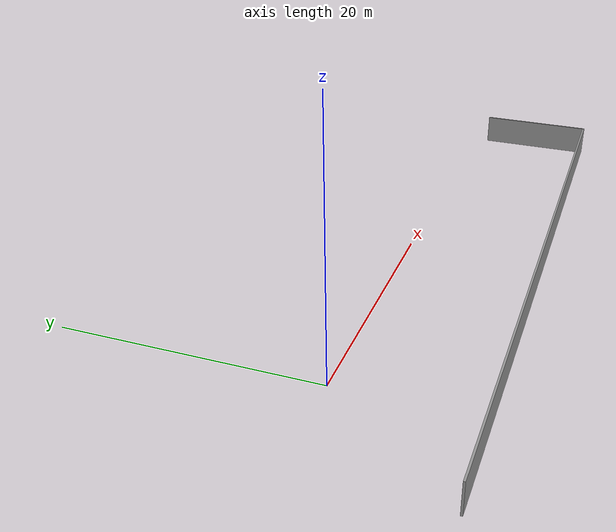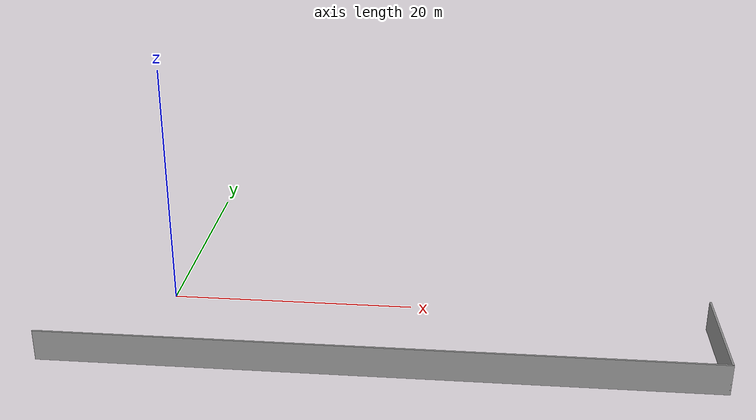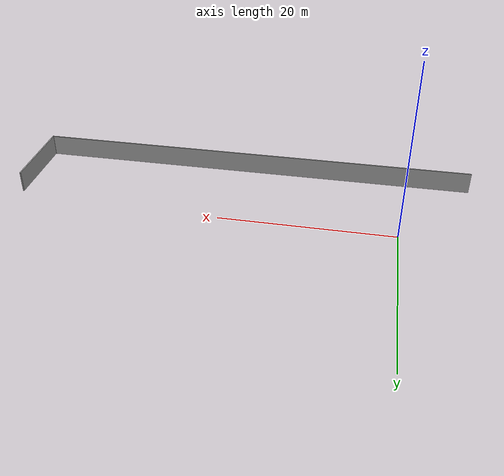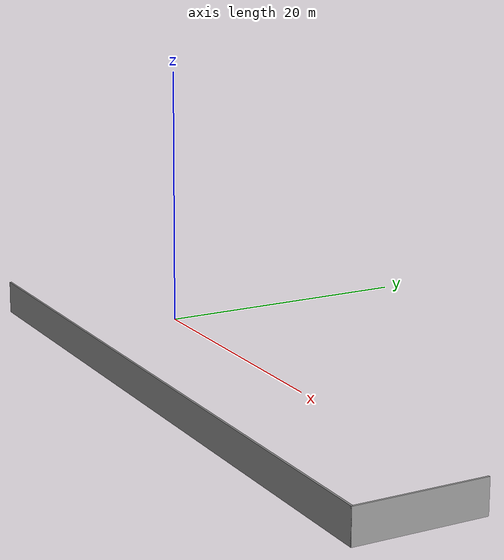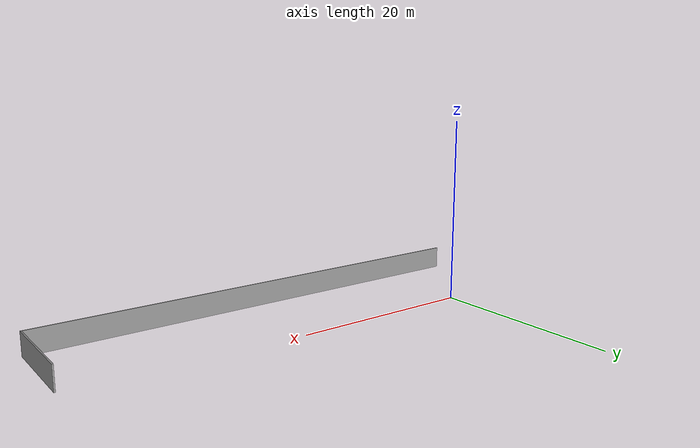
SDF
<?xml version='1.0'?>
<sdf version='1.7'>
  <model name='updated_world'>
    <pose>17.9537 -5.43017 0 0 -0 0</pose>
    <link name='Wall_10'>
      <collision name='Wall_10_Collision'>
        <geometry>
          <box>
            <size>9.5 0.15 2.5</size>
          </box>
        </geometry>
        <pose>0 0 1.25 0 -0 0</pose>
      </collision>
      <visual name='Wall_10_Visual'>
        <pose>0 0 1.25 0 -0 0</pose>
        <geometry>
          <box>
            <size>9.5 0.15 2.5</size>
          </box>
        </geometry>
        <material>
          <script>
            <uri>file://media/materials/scripts/gazebo.material</uri>
            <name>Gazebo/Grey</name>
          </script>
          <ambient>1 1 1 1</ambient>
        </material>
        <meta>
          <layer>0</layer>
        </meta>
      </visual>
      <pose>26.05 -0.68017 0 0 -0 1.5708</pose>
    </link>
    <link name='Wall_9'>
      <collision name='Wall_9_Collision'>
        <geometry>
          <box>
            <size>52.25 0.15 2.5</size>
          </box>
        </geometry>
        <pose>0 0 1.25 0 -0 0</pose>
      </collision>
      <visual name='Wall_9_Visual'>
        <pose>0 0 1.25 0 -0 0</pose>
        <geometry>
          <box>
            <size>52.25 0.15 2.5</size>
          </box>
        </geometry>
        <material>
          <script>
            <uri>file://media/materials/scripts/gazebo.material</uri>
            <name>Gazebo/Grey</name>
          </script>
          <ambient>1 1 1 1</ambient>
        </material>
        <meta>
          <layer>0</layer>
        </meta>
      </visual>
      <pose>0 -5.35517 0 0 -0 0</pose>
    </link>
    <static>1</static>
  </model>
</sdf>
